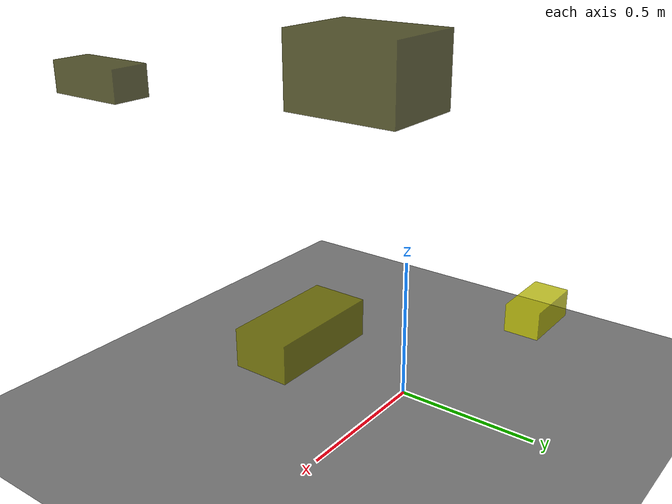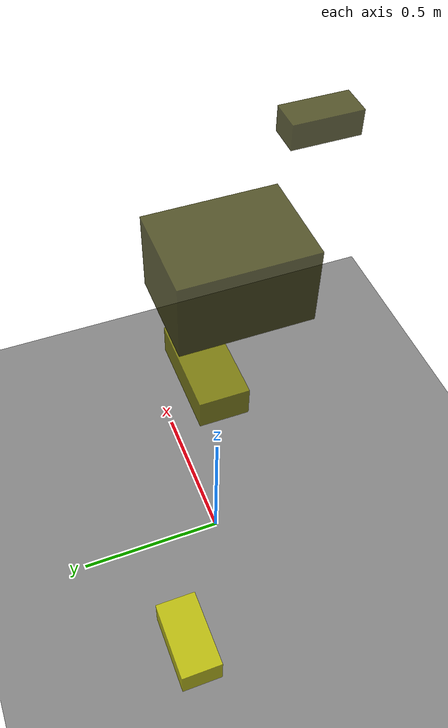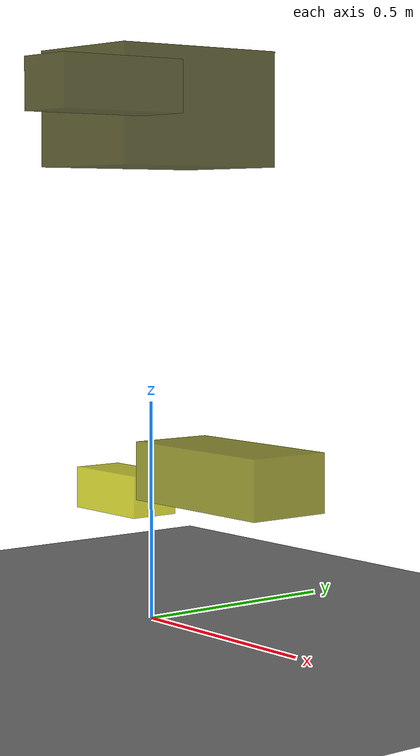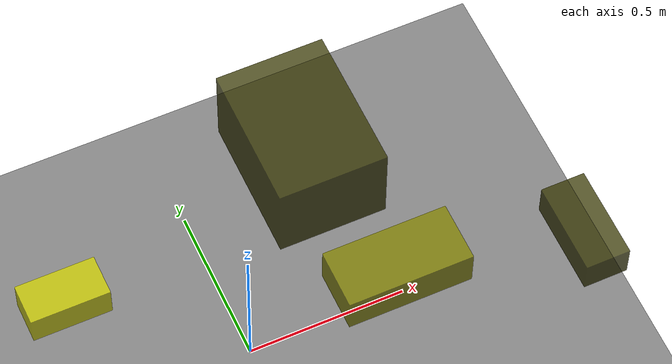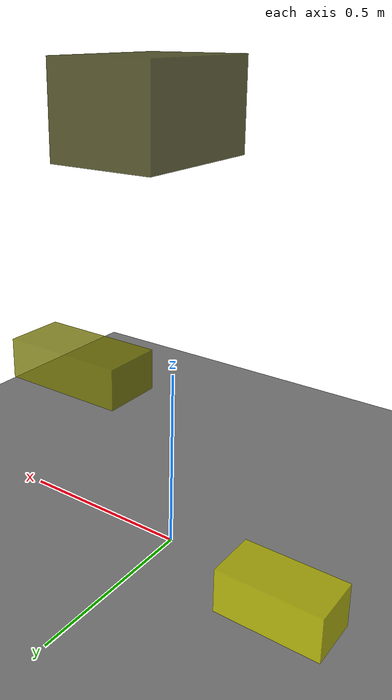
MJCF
<?xml version="1.0"?>
<mujoco model="obstacle_scene">
  <compiler angle="radian" coordinate="local"/>
  <option timestep="0.001" gravity="0 0 -9.81"/>

  <asset>
    <material name="obstacle_mat" rgba="0.8 0.8 0.0 0.8"/>
    <material name="ground_mat" rgba="0.5 0.5 0.5 1"/>
  </asset>

  <worldbody>
    <!-- Ground plane -->
    <geom name="ground" type="plane" size="3 3 0.1" material="ground_mat"/>

    <!-- Obstacles -->
    <body name="obstacle_0" pos="0.130848 -0.078124 1.156403">
      <geom name="obs_0" type="box" size="0.152289 0.204136 0.126067" rgba="0.2 0.2 0.0 0.8"/>
    </body>
    <body name="obstacle_1" pos="0.417607 -0.115521 0.382818">
      <geom name="obs_1" type="box" size="0.195136 0.093585 0.062314" rgba="0.5 0.5 0.0 0.8"/>
    </body>
    <body name="obstacle_2" pos="-0.472130 0.272786 0.219440">
      <geom name="obs_2" type="box" size="0.124323 0.065369 0.052830" rgba="0.8 0.8 0.0 0.8"/>
    </body>
    <body name="obstacle_3" pos="0.687940 -0.621520 1.156339">
      <geom name="obs_3" type="box" size="0.061458 0.129276 0.048081" rgba="0.2 0.2 0.0 0.8"/>
    </body>
  </worldbody>
</mujoco>
